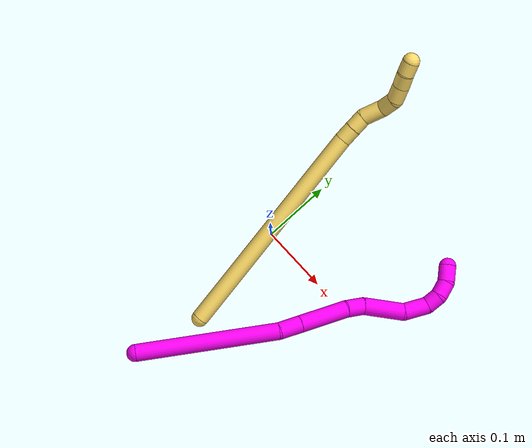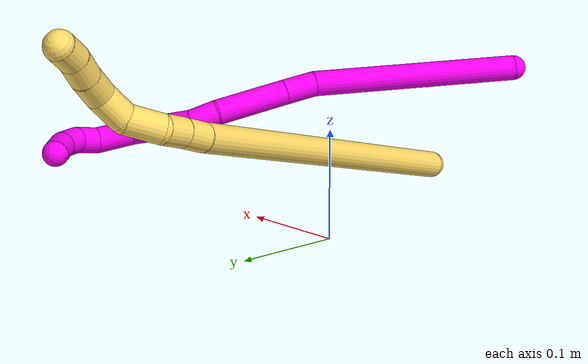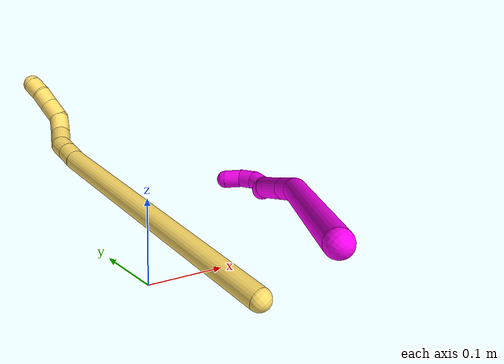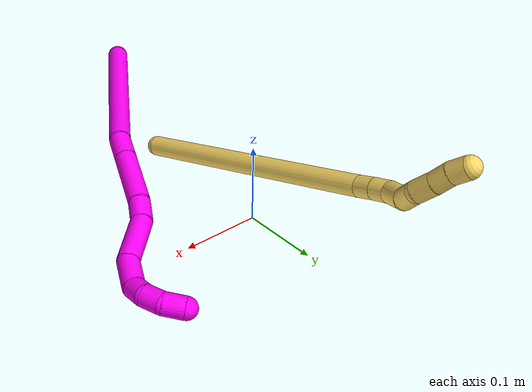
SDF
<sdf version="1.7">
 <world name="default">
  <model name="5">
   <static>0</static>
   <link name="5">
    <collision name="collision-cylinder-e_1_1_4">
     <pose>-0.021983 0.085017 0.140486 -0.544211 -0.133081 0.037184</pose>
     <geometry><cylinder><radius>0.0125</radius><length>0.331345</length></cylinder></geometry>
     <surface>
      <friction><ode><mu>1.16</mu><mu2>1.16</mu2><slip1>0</slip1><slip2>0</slip2></ode></friction>
      <contact><ode><kp>1e+06</kp><kd>1</kd><max_vel>0</max_vel><min_depth>0.001</min_depth></ode></contact>
     </surface>
    </collision>
    <visual name="visual-cylinder-e_1_1_4">
     <pose>-0.021983 0.085017 0.140486 -0.544211 -0.133081 0.037184</pose>
     <geometry><cylinder><radius>0.0125</radius><length>0.331345</length></cylinder></geometry>
     <material><ambient>1 0.858824 0.4 1</ambient></material>
    </visual>
    <collision name="collision-cylinder-e_2_4_5">
     <pose>-0.044197 0.175738 0.290455 -0.54145 -0.020875 0.005794</pose>
     <geometry><cylinder><radius>0.0125</radius><length>0.022138</length></cylinder></geometry>
     <surface>
      <friction><ode><mu>1.16</mu><mu2>1.16</mu2><slip1>0</slip1><slip2>0</slip2></ode></friction>
      <contact><ode><kp>1e+06</kp><kd>1</kd><max_vel>0</max_vel><min_depth>0.001</min_depth></ode></contact>
     </surface>
    </collision>
    <visual name="visual-cylinder-e_2_4_5">
     <pose>-0.044197 0.175738 0.290455 -0.54145 -0.020875 0.005794</pose>
     <geometry><cylinder><radius>0.0125</radius><length>0.022138</length></cylinder></geometry>
     <material><ambient>1 0.858824 0.4 1</ambient></material>
    </visual>
    <collision name="collision-cylinder-e_3_5_6">
     <pose>-0.045002 0.187333 0.309037 -0.574632 -0.052904 0.015636</pose>
     <geometry><cylinder><radius>0.0125</radius><length>0.02171</length></cylinder></geometry>
     <surface>
      <friction><ode><mu>1.16</mu><mu2>1.16</mu2><slip1>0</slip1><slip2>0</slip2></ode></friction>
      <contact><ode><kp>1e+06</kp><kd>1</kd><max_vel>0</max_vel><min_depth>0.001</min_depth></ode></contact>
     </surface>
    </collision>
    <visual name="visual-cylinder-e_3_5_6">
     <pose>-0.045002 0.187333 0.309037 -0.574632 -0.052904 0.015636</pose>
     <geometry><cylinder><radius>0.0125</radius><length>0.02171</length></cylinder></geometry>
     <material><ambient>1 0.858824 0.4 1</ambient></material>
    </visual>
    <collision name="collision-cylinder-e_4_6_7">
     <pose>-0.040975 0.203872 0.328898 -0.780062 0.295048 -0.122027</pose>
     <geometry><cylinder><radius>0.0125</radius><length>0.031643</length></cylinder></geometry>
     <surface>
      <friction><ode><mu>1.16</mu><mu2>1.16</mu2><slip1>0</slip1><slip2>0</slip2></ode></friction>
      <contact><ode><kp>1e+06</kp><kd>1</kd><max_vel>0</max_vel><min_depth>0.001</min_depth></ode></contact>
     </surface>
    </collision>
    <visual name="visual-cylinder-e_4_6_7">
     <pose>-0.040975 0.203872 0.328898 -0.780062 0.295048 -0.122027</pose>
     <geometry><cylinder><radius>0.0125</radius><length>0.031643</length></cylinder></geometry>
     <material><ambient>1 0.858824 0.4 1</ambient></material>
    </visual>
    <collision name="collision-cylinder-e_5_7_8">
     <pose>-0.029995 0.217935 0.35076 -0.298519 0.502261 -0.07712</pose>
     <geometry><cylinder><radius>0.0125</radius><length>0.026503</length></cylinder></geometry>
     <surface>
      <friction><ode><mu>1.16</mu><mu2>1.16</mu2><slip1>0</slip1><slip2>0</slip2></ode></friction>
      <contact><ode><kp>1e+06</kp><kd>1</kd><max_vel>0</max_vel><min_depth>0.001</min_depth></ode></contact>
     </surface>
    </collision>
    <visual name="visual-cylinder-e_5_7_8">
     <pose>-0.029995 0.217935 0.35076 -0.298519 0.502261 -0.07712</pose>
     <geometry><cylinder><radius>0.0125</radius><length>0.026503</length></cylinder></geometry>
     <material><ambient>1 0.858824 0.4 1</ambient></material>
    </visual>
    <collision name="collision-cylinder-e_6_8_9">
     <pose>-0.022573 0.222054 0.374343 -0.056239 0.083176 -0.002341</pose>
     <geometry><cylinder><radius>0.0125</radius><length>0.025089</length></cylinder></geometry>
     <surface>
      <friction><ode><mu>1.16</mu><mu2>1.16</mu2><slip1>0</slip1><slip2>0</slip2></ode></friction>
      <contact><ode><kp>1e+06</kp><kd>1</kd><max_vel>0</max_vel><min_depth>0.001</min_depth></ode></contact>
     </surface>
    </collision>
    <visual name="visual-cylinder-e_6_8_9">
     <pose>-0.022573 0.222054 0.374343 -0.056239 0.083176 -0.002341</pose>
     <geometry><cylinder><radius>0.0125</radius><length>0.025089</length></cylinder></geometry>
     <material><ambient>1 0.858824 0.4 1</ambient></material>
    </visual>
    <collision name="collision-cylinder-e_7_9_10">
     <pose>-0.020378 0.222497 0.397372 0.024594 0.108865 0.00134</pose>
     <geometry><cylinder><radius>0.0125</radius><length>0.021227</length></cylinder></geometry>
     <surface>
      <friction><ode><mu>1.16</mu><mu2>1.16</mu2><slip1>0</slip1><slip2>0</slip2></ode></friction>
      <contact><ode><kp>1e+06</kp><kd>1</kd><max_vel>0</max_vel><min_depth>0.001</min_depth></ode></contact>
     </surface>
    </collision>
    <visual name="visual-cylinder-e_7_9_10">
     <pose>-0.020378 0.222497 0.397372 0.024594 0.108865 0.00134</pose>
     <geometry><cylinder><radius>0.0125</radius><length>0.021227</length></cylinder></geometry>
     <material><ambient>1 0.858824 0.4 1</ambient></material>
    </visual>
    <collision name="collision-cylinder-e_8_10_2">
     <pose>-0.019337 0.223555 0.418005 -0.129876 -0.011082 0.000721</pose>
     <geometry><cylinder><radius>0.0125</radius><length>0.020343</length></cylinder></geometry>
     <surface>
      <friction><ode><mu>1.16</mu><mu2>1.16</mu2><slip1>0</slip1><slip2>0</slip2></ode></friction>
      <contact><ode><kp>1e+06</kp><kd>1</kd><max_vel>0</max_vel><min_depth>0.001</min_depth></ode></contact>
     </surface>
    </collision>
    <visual name="visual-cylinder-e_8_10_2">
     <pose>-0.019337 0.223555 0.418005 -0.129876 -0.011082 0.000721</pose>
     <geometry><cylinder><radius>0.0125</radius><length>0.020343</length></cylinder></geometry>
     <material><ambient>1 0.858824 0.4 1</ambient></material>
    </visual>
    <collision name="collision-sphere-2">
     <pose>-0.01945 0.224872 0.42809 0 -0 0</pose>
     <geometry><sphere><radius>0.0125</radius></sphere></geometry>
     <surface>
      <friction><ode><mu>1.16</mu><mu2>1.16</mu2><slip1>0</slip1><slip2>0</slip2></ode></friction>
      <contact><ode><kp>1e+06</kp><kd>1</kd><max_vel>0</max_vel><min_depth>0.001</min_depth></ode></contact>
     </surface>
    </collision>
    <visual name="visual-sphere-2">
     <pose>-0.01945 0.224872 0.42809 0 -0 0</pose>
     <geometry><sphere><radius>0.0125</radius></sphere></geometry>
     <material><ambient>1 0.858824 0.4 1</ambient></material>
    </visual>
    <collision name="collision-sphere-10">
     <pose>-0.019225 0.222238 0.40792 0 -0 0</pose>
     <geometry><sphere><radius>0.0125</radius></sphere></geometry>
     <surface>
      <friction><ode><mu>1.16</mu><mu2>1.16</mu2><slip1>0</slip1><slip2>0</slip2></ode></friction>
      <contact><ode><kp>1e+06</kp><kd>1</kd><max_vel>0</max_vel><min_depth>0.001</min_depth></ode></contact>
     </surface>
    </collision>
    <visual name="visual-sphere-10">
     <pose>-0.019225 0.222238 0.40792 0 -0 0</pose>
     <geometry><sphere><radius>0.0125</radius></sphere></geometry>
     <material><ambient>1 0.858824 0.4 1</ambient></material>
    </visual>
    <collision name="collision-sphere-9">
     <pose>-0.021531 0.222757 0.386825 0 -0 0</pose>
     <geometry><sphere><radius>0.0125</radius></sphere></geometry>
     <surface>
      <friction><ode><mu>1.16</mu><mu2>1.16</mu2><slip1>0</slip1><slip2>0</slip2></ode></friction>
      <contact><ode><kp>1e+06</kp><kd>1</kd><max_vel>0</max_vel><min_depth>0.001</min_depth></ode></contact>
     </surface>
    </collision>
    <visual name="visual-sphere-9">
     <pose>-0.021531 0.222757 0.386825 0 -0 0</pose>
     <geometry><sphere><radius>0.0125</radius></sphere></geometry>
     <material><ambient>1 0.858824 0.4 1</ambient></material>
    </visual>
    <collision name="collision-sphere-4">
     <pose>-0.043966 0.170035 0.280971 0 -0 0</pose>
     <geometry><sphere><radius>0.0125</radius></sphere></geometry>
     <surface>
      <friction><ode><mu>1.16</mu><mu2>1.16</mu2><slip1>0</slip1><slip2>0</slip2></ode></friction>
      <contact><ode><kp>1e+06</kp><kd>1</kd><max_vel>0</max_vel><min_depth>0.001</min_depth></ode></contact>
     </surface>
    </collision>
    <visual name="visual-sphere-4">
     <pose>-0.043966 0.170035 0.280971 0 -0 0</pose>
     <geometry><sphere><radius>0.0125</radius></sphere></geometry>
     <material><ambient>1 0.858824 0.4 1</ambient></material>
    </visual>
    <collision name="collision-sphere-1">
     <geometry><sphere><radius>0.0125</radius></sphere></geometry>
     <surface>
      <friction><ode><mu>1.16</mu><mu2>1.16</mu2><slip1>0</slip1><slip2>0</slip2></ode></friction>
      <contact><ode><kp>1e+06</kp><kd>1</kd><max_vel>0</max_vel><min_depth>0.001</min_depth></ode></contact>
     </surface>
    </collision>
    <visual name="visual-sphere-1">
     <geometry><sphere><radius>0.0125</radius></sphere></geometry>
     <material><ambient>1 0.858824 0.4 1</ambient></material>
    </visual>
    <collision name="collision-sphere-8">
     <pose>-0.023616 0.221351 0.361862 0 -0 0</pose>
     <geometry><sphere><radius>0.0125</radius></sphere></geometry>
     <surface>
      <friction><ode><mu>1.16</mu><mu2>1.16</mu2><slip1>0</slip1><slip2>0</slip2></ode></friction>
      <contact><ode><kp>1e+06</kp><kd>1</kd><max_vel>0</max_vel><min_depth>0.001</min_depth></ode></contact>
     </surface>
    </collision>
    <visual name="visual-sphere-8">
     <pose>-0.023616 0.221351 0.361862 0 -0 0</pose>
     <geometry><sphere><radius>0.0125</radius></sphere></geometry>
     <material><ambient>1 0.858824 0.4 1</ambient></material>
    </visual>
    <collision name="collision-sphere-5">
     <pose>-0.044428 0.181442 0.299938 0 -0 0</pose>
     <geometry><sphere><radius>0.0125</radius></sphere></geometry>
     <surface>
      <friction><ode><mu>1.16</mu><mu2>1.16</mu2><slip1>0</slip1><slip2>0</slip2></ode></friction>
      <contact><ode><kp>1e+06</kp><kd>1</kd><max_vel>0</max_vel><min_depth>0.001</min_depth></ode></contact>
     </surface>
    </collision>
    <visual name="visual-sphere-5">
     <pose>-0.044428 0.181442 0.299938 0 -0 0</pose>
     <geometry><sphere><radius>0.0125</radius></sphere></geometry>
     <material><ambient>1 0.858824 0.4 1</ambient></material>
    </visual>
    <collision name="collision-sphere-6">
     <pose>-0.045576 0.193225 0.318136 0 -0 0</pose>
     <geometry><sphere><radius>0.0125</radius></sphere></geometry>
     <surface>
      <friction><ode><mu>1.16</mu><mu2>1.16</mu2><slip1>0</slip1><slip2>0</slip2></ode></friction>
      <contact><ode><kp>1e+06</kp><kd>1</kd><max_vel>0</max_vel><min_depth>0.001</min_depth></ode></contact>
     </surface>
    </collision>
    <visual name="visual-sphere-6">
     <pose>-0.045576 0.193225 0.318136 0 -0 0</pose>
     <geometry><sphere><radius>0.0125</radius></sphere></geometry>
     <material><ambient>1 0.858824 0.4 1</ambient></material>
    </visual>
    <collision name="collision-sphere-7">
     <pose>-0.036374 0.214519 0.339659 0 -0 0</pose>
     <geometry><sphere><radius>0.0125</radius></sphere></geometry>
     <surface>
      <friction><ode><mu>1.16</mu><mu2>1.16</mu2><slip1>0</slip1><slip2>0</slip2></ode></friction>
      <contact><ode><kp>1e+06</kp><kd>1</kd><max_vel>0</max_vel><min_depth>0.001</min_depth></ode></contact>
     </surface>
    </collision>
    <visual name="visual-sphere-7">
     <pose>-0.036374 0.214519 0.339659 0 -0 0</pose>
     <geometry><sphere><radius>0.0125</radius></sphere></geometry>
     <material><ambient>1 0.858824 0.4 1</ambient></material>
    </visual>
    <inertial>
     <pose>-0.025446 0.126394 0.211446 0 -0 0</pose>
     <mass>0.5</mass>
     <inertia>
      <ixx>0.00314</ixx>
      <ixy>0</ixy>
      <ixz>0</ixz>
      <iyy>0.002753</iyy>
      <iyz>0</iyz>
      <izz>-0.001133</izz>
     </inertia>
    </inertial>
   </link>
   <pose>0.025701 -0.162548 0.039095 -0.594375 -0.680208 -0.249578</pose>
  </model>
  <model name="10">
   <static>0</static>
   <link name="10">
    <collision name="collision-cylinder-e_1_1_4">
     <pose>0.036241 0.049067 0.082611 -0.535959 0.360676 -0.10004</pose>
     <geometry><cylinder><radius>0.0125</radius><length>0.205383</length></cylinder></geometry>
     <surface>
      <friction><ode><mu>1.16</mu><mu2>1.16</mu2><slip1>0</slip1><slip2>0</slip2></ode></friction>
      <contact><ode><kp>1e+06</kp><kd>1</kd><max_vel>0</max_vel><min_depth>0.001</min_depth></ode></contact>
     </surface>
    </collision>
    <visual name="visual-cylinder-e_1_1_4">
     <pose>0.036241 0.049067 0.082611 -0.535959 0.360676 -0.10004</pose>
     <geometry><cylinder><radius>0.0125</radius><length>0.205383</length></cylinder></geometry>
     <material><ambient>1 0 0.964706 1</ambient></material>
    </visual>
    <collision name="collision-cylinder-e_2_4_5">
     <pose>0.074531 0.107385 0.178401 -0.612077 0.12664 -0.040062</pose>
     <geometry><cylinder><radius>0.0125</radius><length>0.032463</length></cylinder></geometry>
     <surface>
      <friction><ode><mu>1.16</mu><mu2>1.16</mu2><slip1>0</slip1><slip2>0</slip2></ode></friction>
      <contact><ode><kp>1e+06</kp><kd>1</kd><max_vel>0</max_vel><min_depth>0.001</min_depth></ode></contact>
     </surface>
    </collision>
    <visual name="visual-cylinder-e_2_4_5">
     <pose>0.074531 0.107385 0.178401 -0.612077 0.12664 -0.040062</pose>
     <geometry><cylinder><radius>0.0125</radius><length>0.032463</length></cylinder></geometry>
     <material><ambient>1 0 0.964706 1</ambient></material>
    </visual>
    <collision name="collision-cylinder-e_3_5_6">
     <pose>0.080934 0.137305 0.220343 -0.623064 0.122279 -0.03942</pose>
     <geometry><cylinder><radius>0.0125</radius><length>0.07137</length></cylinder></geometry>
     <surface>
      <friction><ode><mu>1.16</mu><mu2>1.16</mu2><slip1>0</slip1><slip2>0</slip2></ode></friction>
      <contact><ode><kp>1e+06</kp><kd>1</kd><max_vel>0</max_vel><min_depth>0.001</min_depth></ode></contact>
     </surface>
    </collision>
    <visual name="visual-cylinder-e_3_5_6">
     <pose>0.080934 0.137305 0.220343 -0.623064 0.122279 -0.03942</pose>
     <geometry><cylinder><radius>0.0125</radius><length>0.07137</length></cylinder></geometry>
     <material><ambient>1 0 0.964706 1</ambient></material>
    </visual>
    <collision name="collision-cylinder-e_4_6_7">
     <pose>0.087788 0.167219 0.258486 -0.778268 0.187699 -0.077153</pose>
     <geometry><cylinder><radius>0.0125</radius><length>0.026813</length></cylinder></geometry>
     <surface>
      <friction><ode><mu>1.16</mu><mu2>1.16</mu2><slip1>0</slip1><slip2>0</slip2></ode></friction>
      <contact><ode><kp>1e+06</kp><kd>1</kd><max_vel>0</max_vel><min_depth>0.001</min_depth></ode></contact>
     </surface>
    </collision>
    <visual name="visual-cylinder-e_4_6_7">
     <pose>0.087788 0.167219 0.258486 -0.778268 0.187699 -0.077153</pose>
     <geometry><cylinder><radius>0.0125</radius><length>0.026813</length></cylinder></geometry>
     <material><ambient>1 0 0.964706 1</ambient></material>
    </visual>
    <collision name="collision-cylinder-e_5_7_8">
     <pose>0.106011 0.194669 0.285492 -0.801469 0.555318 -0.24034</pose>
     <geometry><cylinder><radius>0.0125</radius><length>0.05964</length></cylinder></geometry>
     <surface>
      <friction><ode><mu>1.16</mu><mu2>1.16</mu2><slip1>0</slip1><slip2>0</slip2></ode></friction>
      <contact><ode><kp>1e+06</kp><kd>1</kd><max_vel>0</max_vel><min_depth>0.001</min_depth></ode></contact>
     </surface>
    </collision>
    <visual name="visual-cylinder-e_5_7_8">
     <pose>0.106011 0.194669 0.285492 -0.801469 0.555318 -0.24034</pose>
     <geometry><cylinder><radius>0.0125</radius><length>0.05964</length></cylinder></geometry>
     <material><ambient>1 0 0.964706 1</ambient></material>
    </visual>
    <collision name="collision-cylinder-e_6_8_9">
     <pose>0.125082 0.222943 0.317853 -0.599632 0.185507 -0.057496</pose>
     <geometry><cylinder><radius>0.0125</radius><length>0.036317</length></cylinder></geometry>
     <surface>
      <friction><ode><mu>1.16</mu><mu2>1.16</mu2><slip1>0</slip1><slip2>0</slip2></ode></friction>
      <contact><ode><kp>1e+06</kp><kd>1</kd><max_vel>0</max_vel><min_depth>0.001</min_depth></ode></contact>
     </surface>
    </collision>
    <visual name="visual-cylinder-e_6_8_9">
     <pose>0.125082 0.222943 0.317853 -0.599632 0.185507 -0.057496</pose>
     <geometry><cylinder><radius>0.0125</radius><length>0.036317</length></cylinder></geometry>
     <material><ambient>1 0 0.964706 1</ambient></material>
    </visual>
    <collision name="collision-cylinder-e_7_9_10">
     <pose>0.127987 0.234627 0.343277 -0.149619 -0.04107 0.003079</pose>
     <geometry><cylinder><radius>0.0125</radius><length>0.021642</length></cylinder></geometry>
     <surface>
      <friction><ode><mu>1.16</mu><mu2>1.16</mu2><slip1>0</slip1><slip2>0</slip2></ode></friction>
      <contact><ode><kp>1e+06</kp><kd>1</kd><max_vel>0</max_vel><min_depth>0.001</min_depth></ode></contact>
     </surface>
    </collision>
    <visual name="visual-cylinder-e_7_9_10">
     <pose>0.127987 0.234627 0.343277 -0.149619 -0.04107 0.003079</pose>
     <geometry><cylinder><radius>0.0125</radius><length>0.021642</length></cylinder></geometry>
     <material><ambient>1 0 0.964706 1</ambient></material>
    </visual>
    <collision name="collision-cylinder-e_8_10_11">
     <pose>0.122477 0.238007 0.36352 -0.183148 -0.4807 0.045006</pose>
     <geometry><cylinder><radius>0.0125</radius><length>0.021912</length></cylinder></geometry>
     <surface>
      <friction><ode><mu>1.16</mu><mu2>1.16</mu2><slip1>0</slip1><slip2>0</slip2></ode></friction>
      <contact><ode><kp>1e+06</kp><kd>1</kd><max_vel>0</max_vel><min_depth>0.001</min_depth></ode></contact>
     </surface>
    </collision>
    <visual name="visual-cylinder-e_8_10_11">
     <pose>0.122477 0.238007 0.36352 -0.183148 -0.4807 0.045006</pose>
     <geometry><cylinder><radius>0.0125</radius><length>0.021912</length></cylinder></geometry>
     <material><ambient>1 0 0.964706 1</ambient></material>
    </visual>
    <collision name="collision-cylinder-e_9_11_2">
     <pose>0.107937 0.240551 0.380767 -0.100259 -0.886165 0.047609</pose>
     <geometry><cylinder><radius>0.0125</radius><length>0.02446</length></cylinder></geometry>
     <surface>
      <friction><ode><mu>1.16</mu><mu2>1.16</mu2><slip1>0</slip1><slip2>0</slip2></ode></friction>
      <contact><ode><kp>1e+06</kp><kd>1</kd><max_vel>0</max_vel><min_depth>0.001</min_depth></ode></contact>
     </surface>
    </collision>
    <visual name="visual-cylinder-e_9_11_2">
     <pose>0.107937 0.240551 0.380767 -0.100259 -0.886165 0.047609</pose>
     <geometry><cylinder><radius>0.0125</radius><length>0.02446</length></cylinder></geometry>
     <material><ambient>1 0 0.964706 1</ambient></material>
    </visual>
    <collision name="collision-sphere-2">
     <pose>0.098463 0.241325 0.388462 0 -0 0</pose>
     <geometry><sphere><radius>0.0125</radius></sphere></geometry>
     <surface>
      <friction><ode><mu>1.16</mu><mu2>1.16</mu2><slip1>0</slip1><slip2>0</slip2></ode></friction>
      <contact><ode><kp>1e+06</kp><kd>1</kd><max_vel>0</max_vel><min_depth>0.001</min_depth></ode></contact>
     </surface>
    </collision>
    <visual name="visual-sphere-2">
     <pose>0.098463 0.241325 0.388462 0 -0 0</pose>
     <geometry><sphere><radius>0.0125</radius></sphere></geometry>
     <material><ambient>1 0 0.964706 1</ambient></material>
    </visual>
    <collision name="collision-sphere-11">
     <pose>0.11741 0.239777 0.373072 0 -0 0</pose>
     <geometry><sphere><radius>0.0125</radius></sphere></geometry>
     <surface>
      <friction><ode><mu>1.16</mu><mu2>1.16</mu2><slip1>0</slip1><slip2>0</slip2></ode></friction>
      <contact><ode><kp>1e+06</kp><kd>1</kd><max_vel>0</max_vel><min_depth>0.001</min_depth></ode></contact>
     </surface>
    </collision>
    <visual name="visual-sphere-11">
     <pose>0.11741 0.239777 0.373072 0 -0 0</pose>
     <geometry><sphere><radius>0.0125</radius></sphere></geometry>
     <material><ambient>1 0 0.964706 1</ambient></material>
    </visual>
    <collision name="collision-sphere-10">
     <pose>0.127543 0.236238 0.353968 0 -0 0</pose>
     <geometry><sphere><radius>0.0125</radius></sphere></geometry>
     <surface>
      <friction><ode><mu>1.16</mu><mu2>1.16</mu2><slip1>0</slip1><slip2>0</slip2></ode></friction>
      <contact><ode><kp>1e+06</kp><kd>1</kd><max_vel>0</max_vel><min_depth>0.001</min_depth></ode></contact>
     </surface>
    </collision>
    <visual name="visual-sphere-10">
     <pose>0.127543 0.236238 0.353968 0 -0 0</pose>
     <geometry><sphere><radius>0.0125</radius></sphere></geometry>
     <material><ambient>1 0 0.964706 1</ambient></material>
    </visual>
    <collision name="collision-sphere-9">
     <pose>0.128431 0.233015 0.332586 0 -0 0</pose>
     <geometry><sphere><radius>0.0125</radius></sphere></geometry>
     <surface>
      <friction><ode><mu>1.16</mu><mu2>1.16</mu2><slip1>0</slip1><slip2>0</slip2></ode></friction>
      <contact><ode><kp>1e+06</kp><kd>1</kd><max_vel>0</max_vel><min_depth>0.001</min_depth></ode></contact>
     </surface>
    </collision>
    <visual name="visual-sphere-9">
     <pose>0.128431 0.233015 0.332586 0 -0 0</pose>
     <geometry><sphere><radius>0.0125</radius></sphere></geometry>
     <material><ambient>1 0 0.964706 1</ambient></material>
    </visual>
    <collision name="collision-sphere-4">
     <pose>0.072481 0.098134 0.165222 0 -0 0</pose>
     <geometry><sphere><radius>0.0125</radius></sphere></geometry>
     <surface>
      <friction><ode><mu>1.16</mu><mu2>1.16</mu2><slip1>0</slip1><slip2>0</slip2></ode></friction>
      <contact><ode><kp>1e+06</kp><kd>1</kd><max_vel>0</max_vel><min_depth>0.001</min_depth></ode></contact>
     </surface>
    </collision>
    <visual name="visual-sphere-4">
     <pose>0.072481 0.098134 0.165222 0 -0 0</pose>
     <geometry><sphere><radius>0.0125</radius></sphere></geometry>
     <material><ambient>1 0 0.964706 1</ambient></material>
    </visual>
    <collision name="collision-sphere-1">
     <geometry><sphere><radius>0.0125</radius></sphere></geometry>
     <surface>
      <friction><ode><mu>1.16</mu><mu2>1.16</mu2><slip1>0</slip1><slip2>0</slip2></ode></friction>
      <contact><ode><kp>1e+06</kp><kd>1</kd><max_vel>0</max_vel><min_depth>0.001</min_depth></ode></contact>
     </surface>
    </collision>
    <visual name="visual-sphere-1">
     <geometry><sphere><radius>0.0125</radius></sphere></geometry>
     <material><ambient>1 0 0.964706 1</ambient></material>
    </visual>
    <collision name="collision-sphere-8">
     <pose>0.121733 0.212871 0.303119 0 -0 0</pose>
     <geometry><sphere><radius>0.0125</radius></sphere></geometry>
     <surface>
      <friction><ode><mu>1.16</mu><mu2>1.16</mu2><slip1>0</slip1><slip2>0</slip2></ode></friction>
      <contact><ode><kp>1e+06</kp><kd>1</kd><max_vel>0</max_vel><min_depth>0.001</min_depth></ode></contact>
     </surface>
    </collision>
    <visual name="visual-sphere-8">
     <pose>0.121733 0.212871 0.303119 0 -0 0</pose>
     <geometry><sphere><radius>0.0125</radius></sphere></geometry>
     <material><ambient>1 0 0.964706 1</ambient></material>
    </visual>
    <collision name="collision-sphere-5">
     <pose>0.076581 0.116637 0.19158 0 -0 0</pose>
     <geometry><sphere><radius>0.0125</radius></sphere></geometry>
     <surface>
      <friction><ode><mu>1.16</mu><mu2>1.16</mu2><slip1>0</slip1><slip2>0</slip2></ode></friction>
      <contact><ode><kp>1e+06</kp><kd>1</kd><max_vel>0</max_vel><min_depth>0.001</min_depth></ode></contact>
     </surface>
    </collision>
    <visual name="visual-sphere-5">
     <pose>0.076581 0.116637 0.19158 0 -0 0</pose>
     <geometry><sphere><radius>0.0125</radius></sphere></geometry>
     <material><ambient>1 0 0.964706 1</ambient></material>
    </visual>
    <collision name="collision-sphere-6">
     <pose>0.085287 0.157972 0.249106 0 -0 0</pose>
     <geometry><sphere><radius>0.0125</radius></sphere></geometry>
     <surface>
      <friction><ode><mu>1.16</mu><mu2>1.16</mu2><slip1>0</slip1><slip2>0</slip2></ode></friction>
      <contact><ode><kp>1e+06</kp><kd>1</kd><max_vel>0</max_vel><min_depth>0.001</min_depth></ode></contact>
     </surface>
    </collision>
    <visual name="visual-sphere-6">
     <pose>0.085287 0.157972 0.249106 0 -0 0</pose>
     <geometry><sphere><radius>0.0125</radius></sphere></geometry>
     <material><ambient>1 0 0.964706 1</ambient></material>
    </visual>
    <collision name="collision-sphere-7">
     <pose>0.09029 0.176466 0.267865 0 -0 0</pose>
     <geometry><sphere><radius>0.0125</radius></sphere></geometry>
     <surface>
      <friction><ode><mu>1.16</mu><mu2>1.16</mu2><slip1>0</slip1><slip2>0</slip2></ode></friction>
      <contact><ode><kp>1e+06</kp><kd>1</kd><max_vel>0</max_vel><min_depth>0.001</min_depth></ode></contact>
     </surface>
    </collision>
    <visual name="visual-sphere-7">
     <pose>0.09029 0.176466 0.267865 0 -0 0</pose>
     <geometry><sphere><radius>0.0125</radius></sphere></geometry>
     <material><ambient>1 0 0.964706 1</ambient></material>
    </visual>
    <inertial>
     <pose>0.073903 0.12746 0.197387 0 -0 0</pose>
     <mass>0.5</mass>
     <inertia>
      <ixx>0.000679</ixx>
      <ixy>0</ixy>
      <ixz>0</ixz>
      <iyy>0.00064</iyy>
      <iyz>0</iyz>
      <izz>-0.000629</izz>
     </inertia>
    </inertial>
   </link>
   <pose>0.01124 -0.268069 0.126143 -1.23543 -0.347479 -0.176337</pose>
  </model>
 </world>
</sdf>
